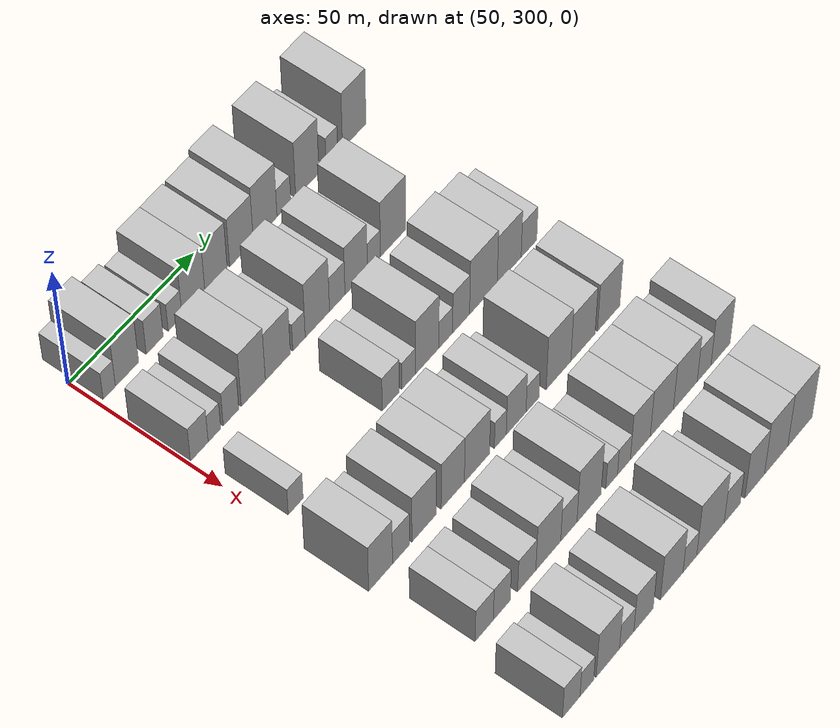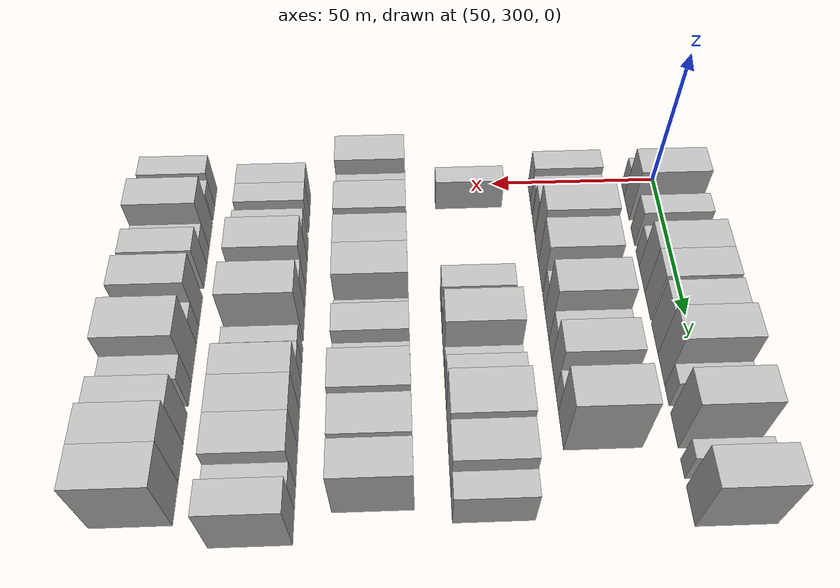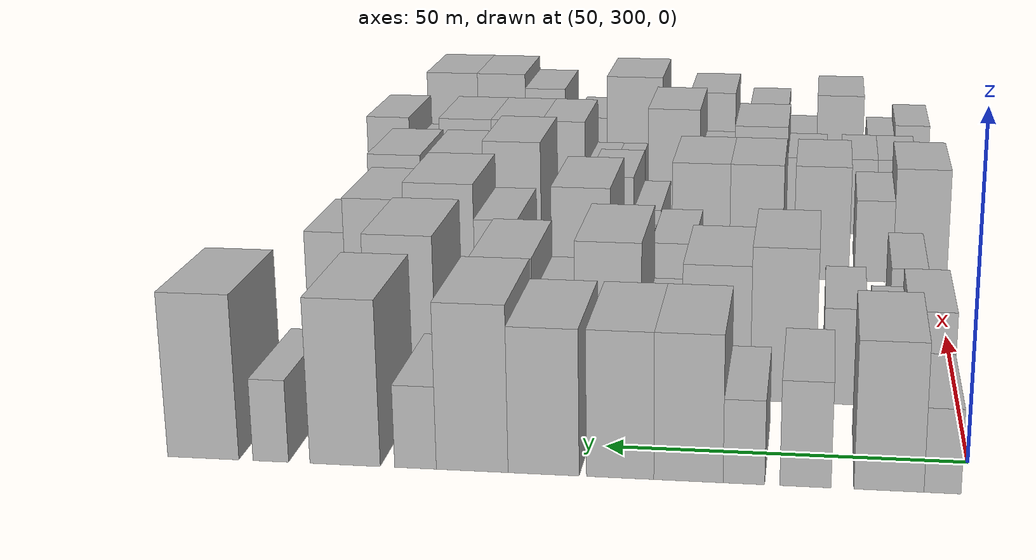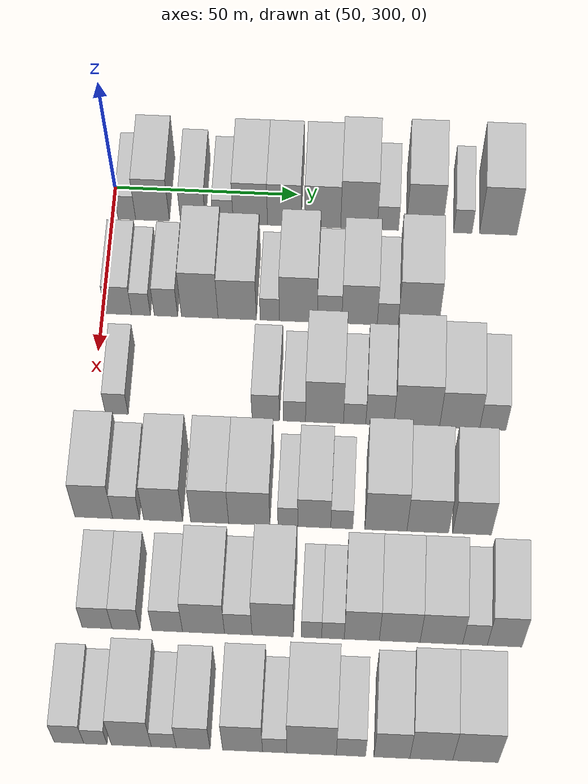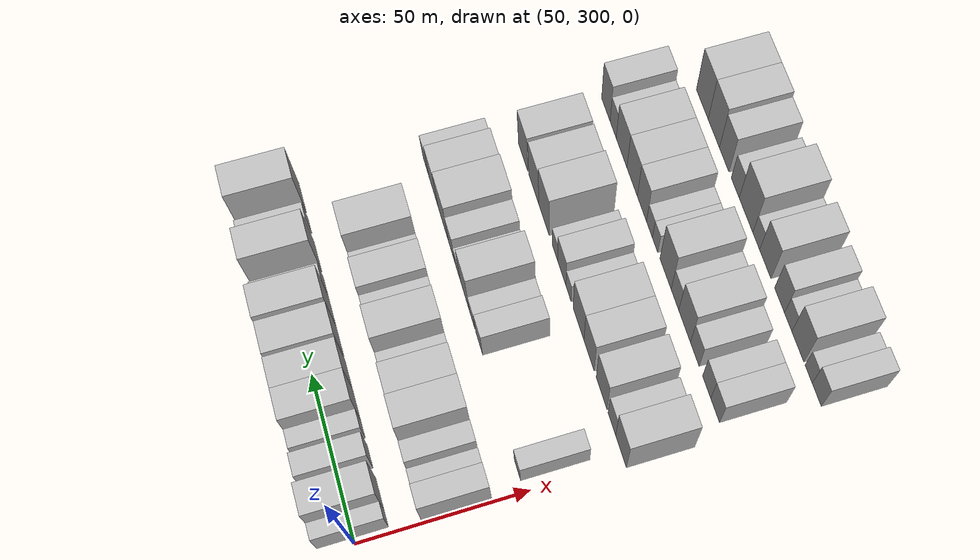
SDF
<sdf version="1.6">
 <world name="default">
  <model name="building_89">
   <static>1</static>
   <pose>50.0000 304.0474 0 0.000000 0.000000 0.000000</pose>
   <link name="link">
    <pose>0 0 6.00 0 0 0</pose>
    <collision name="collision"><geometry><box><size>20.0000 4.8259 12.0000</size></box></geometry></collision>
    <visual name="visual">
     <cast_shadows>0</cast_shadows>
     <geometry><box><size>20.0000 4.8259 12.0000</size></box></geometry>
     <material>
      <script>
       <uri>model://HANNAS_wall/materials/scripts</uri>
       <uri>model://HANNAS_wall/materials/textures</uri>
       <name>vrc/HANNAS_wall</name>
      </script>
     </material>
    </visual>
   </link>
  </model>
  <model name="building_90">
   <static>1</static>
   <pose>50.0000 311.0550 0 0.000000 0.000000 0.000000</pose>
   <link name="link">
    <pose>0 0 10.50 0 0 0</pose>
    <collision name="collision"><geometry><box><size>20.0000 9.1895 21.0000</size></box></geometry></collision>
    <visual name="visual">
     <cast_shadows>0</cast_shadows>
     <geometry><box><size>20.0000 9.1895 21.0000</size></box></geometry>
     <material>
      <script>
       <uri>model://HANNAS_wall/materials/scripts</uri>
       <uri>model://HANNAS_wall/materials/textures</uri>
       <name>vrc/HANNAS_wall</name>
      </script>
     </material>
    </visual>
   </link>
  </model>
  <model name="building_91">
   <static>1</static>
   <pose>50.0000 322.0457 0 0.000000 0.000000 0.000000</pose>
   <link name="link">
    <pose>0 0 7.50 0 0 0</pose>
    <collision name="collision"><geometry><box><size>20.0000 6.7919 15.0000</size></box></geometry></collision>
    <visual name="visual">
     <cast_shadows>0</cast_shadows>
     <geometry><box><size>20.0000 6.7919 15.0000</size></box></geometry>
     <material>
      <script>
       <uri>model://HANNAS_wall/materials/scripts</uri>
       <uri>model://HANNAS_wall/materials/textures</uri>
       <name>vrc/HANNAS_wall</name>
      </script>
     </material>
    </visual>
   </link>
  </model>
  <model name="building_92">
   <static>1</static>
   <pose>50.0000 330.2204 0 0.000000 0.000000 0.000000</pose>
   <link name="link">
    <pose>0 0 6.00 0 0 0</pose>
    <collision name="collision"><geometry><box><size>20.0000 5.5576 12.0000</size></box></geometry></collision>
    <visual name="visual">
     <cast_shadows>0</cast_shadows>
     <geometry><box><size>20.0000 5.5576 12.0000</size></box></geometry>
     <material>
      <script>
       <uri>model://HANNAS_wall/materials/scripts</uri>
       <uri>model://HANNAS_wall/materials/textures</uri>
       <name>vrc/HANNAS_wall</name>
      </script>
     </material>
    </visual>
   </link>
  </model>
  <model name="building_93">
   <static>1</static>
   <pose>50.0000 337.6442 0 0.000000 0.000000 0.000000</pose>
   <link name="link">
    <pose>0 0 10.50 0 0 0</pose>
    <collision name="collision"><geometry><box><size>20.0000 9.2901 21.0000</size></box></geometry></collision>
    <visual name="visual">
     <cast_shadows>0</cast_shadows>
     <geometry><box><size>20.0000 9.2901 21.0000</size></box></geometry>
     <material>
      <script>
       <uri>model://HANNAS_wall/materials/scripts</uri>
       <uri>model://HANNAS_wall/materials/textures</uri>
       <name>vrc/HANNAS_wall</name>
      </script>
     </material>
    </visual>
   </link>
  </model>
  <model name="building_94">
   <static>1</static>
   <pose>50.0000 346.8397 0 0.000000 0.000000 0.000000</pose>
   <link name="link">
    <pose>0 0 10.50 0 0 0</pose>
    <collision name="collision"><geometry><box><size>20.0000 9.1010 21.0000</size></box></geometry></collision>
    <visual name="visual">
     <cast_shadows>0</cast_shadows>
     <geometry><box><size>20.0000 9.1010 21.0000</size></box></geometry>
     <material>
      <script>
       <uri>model://HANNAS_wall/materials/scripts</uri>
       <uri>model://HANNAS_wall/materials/textures</uri>
       <name>vrc/HANNAS_wall</name>
      </script>
     </material>
    </visual>
   </link>
  </model>
  <model name="building_95">
   <static>1</static>
   <pose>50.0000 357.2459 0 0.000000 0.000000 0.000000</pose>
   <link name="link">
    <pose>0 0 10.50 0 0 0</pose>
    <collision name="collision"><geometry><box><size>20.0000 9.7113 21.0000</size></box></geometry></collision>
    <visual name="visual">
     <cast_shadows>0</cast_shadows>
     <geometry><box><size>20.0000 9.7113 21.0000</size></box></geometry>
     <material>
      <script>
       <uri>model://HANNAS_wall/materials/scripts</uri>
       <uri>model://HANNAS_wall/materials/textures</uri>
       <name>vrc/HANNAS_wall</name>
      </script>
     </material>
    </visual>
   </link>
  </model>
  <model name="building_96">
   <static>1</static>
   <pose>50.0000 367.0430 0 0.000000 0.000000 0.000000</pose>
   <link name="link">
    <pose>0 0 12.00 0 0 0</pose>
    <collision name="collision"><geometry><box><size>20.0000 9.8829 24.0000</size></box></geometry></collision>
    <visual name="visual">
     <cast_shadows>0</cast_shadows>
     <geometry><box><size>20.0000 9.8829 24.0000</size></box></geometry>
     <material>
      <script>
       <uri>model://HANNAS_wall/materials/scripts</uri>
       <uri>model://HANNAS_wall/materials/textures</uri>
       <name>vrc/HANNAS_wall</name>
      </script>
     </material>
    </visual>
   </link>
  </model>
  <model name="building_97">
   <static>1</static>
   <pose>50.0000 374.8742 0 0.000000 0.000000 0.000000</pose>
   <link name="link">
    <pose>0 0 6.00 0 0 0</pose>
    <collision name="collision"><geometry><box><size>20.0000 5.7795 12.0000</size></box></geometry></collision>
    <visual name="visual">
     <cast_shadows>0</cast_shadows>
     <geometry><box><size>20.0000 5.7795 12.0000</size></box></geometry>
     <material>
      <script>
       <uri>model://HANNAS_wall/materials/scripts</uri>
       <uri>model://HANNAS_wall/materials/textures</uri>
       <name>vrc/HANNAS_wall</name>
      </script>
     </material>
    </visual>
   </link>
  </model>
  <model name="building_98">
   <static>1</static>
   <pose>50.0000 384.6888 0 0.000000 0.000000 0.000000</pose>
   <link name="link">
    <pose>0 0 12.00 0 0 0</pose>
    <collision name="collision"><geometry><box><size>20.0000 9.8496 24.0000</size></box></geometry></collision>
    <visual name="visual">
     <cast_shadows>0</cast_shadows>
     <geometry><box><size>20.0000 9.8496 24.0000</size></box></geometry>
     <material>
      <script>
       <uri>model://HANNAS_wall/materials/scripts</uri>
       <uri>model://HANNAS_wall/materials/textures</uri>
       <name>vrc/HANNAS_wall</name>
      </script>
     </material>
    </visual>
   </link>
  </model>
  <model name="building_99">
   <static>1</static>
   <pose>50.0000 395.1259 0 0.000000 0.000000 0.000000</pose>
   <link name="link">
    <pose>0 0 6.00 0 0 0</pose>
    <collision name="collision"><geometry><box><size>20.0000 5.0246 12.0000</size></box></geometry></collision>
    <visual name="visual">
     <cast_shadows>0</cast_shadows>
     <geometry><box><size>20.0000 5.0246 12.0000</size></box></geometry>
     <material>
      <script>
       <uri>model://HANNAS_wall/materials/scripts</uri>
       <uri>model://HANNAS_wall/materials/textures</uri>
       <name>vrc/HANNAS_wall</name>
      </script>
     </material>
    </visual>
   </link>
  </model>
  <model name="building_100">
   <static>1</static>
   <pose>50.0000 404.6984 0 0.000000 0.000000 0.000000</pose>
   <link name="link">
    <pose>0 0 12.00 0 0 0</pose>
    <collision name="collision"><geometry><box><size>20.0000 10.1203 24.0000</size></box></geometry></collision>
    <visual name="visual">
     <cast_shadows>0</cast_shadows>
     <geometry><box><size>20.0000 10.1203 24.0000</size></box></geometry>
     <material>
      <script>
       <uri>model://HANNAS_wall/materials/scripts</uri>
       <uri>model://HANNAS_wall/materials/textures</uri>
       <name>vrc/HANNAS_wall</name>
      </script>
     </material>
    </visual>
   </link>
  </model>
  <model name="building_206">
   <static>1</static>
   <pose>79.0000 304.2929 0 0.000000 0.000000 0.000000</pose>
   <link name="link">
    <pose>0 0 7.50 0 0 0</pose>
    <collision name="collision"><geometry><box><size>20.0000 7.0312 15.0000</size></box></geometry></collision>
    <visual name="visual">
     <cast_shadows>0</cast_shadows>
     <geometry><box><size>20.0000 7.0312 15.0000</size></box></geometry>
     <material>
      <script>
       <uri>model://HANNAS_wall/materials/scripts</uri>
       <uri>model://HANNAS_wall/materials/textures</uri>
       <name>vrc/HANNAS_wall</name>
      </script>
     </material>
    </visual>
   </link>
  </model>
  <model name="building_207">
   <static>1</static>
   <pose>79.0000 310.3057 0 0.000000 0.000000 0.000000</pose>
   <link name="link">
    <pose>0 0 6.00 0 0 0</pose>
    <collision name="collision"><geometry><box><size>20.0000 4.9945 12.0000</size></box></geometry></collision>
    <visual name="visual">
     <cast_shadows>0</cast_shadows>
     <geometry><box><size>20.0000 4.9945 12.0000</size></box></geometry>
     <material>
      <script>
       <uri>model://HANNAS_wall/materials/scripts</uri>
       <uri>model://HANNAS_wall/materials/textures</uri>
       <name>vrc/HANNAS_wall</name>
      </script>
     </material>
    </visual>
   </link>
  </model>
  <model name="building_208">
   <static>1</static>
   <pose>79.0000 316.9139 0 0.000000 0.000000 0.000000</pose>
   <link name="link">
    <pose>0 0 7.50 0 0 0</pose>
    <collision name="collision"><geometry><box><size>20.0000 6.2218 15.0000</size></box></geometry></collision>
    <visual name="visual">
     <cast_shadows>0</cast_shadows>
     <geometry><box><size>20.0000 6.2218 15.0000</size></box></geometry>
     <material>
      <script>
       <uri>model://HANNAS_wall/materials/scripts</uri>
       <uri>model://HANNAS_wall/materials/textures</uri>
       <name>vrc/HANNAS_wall</name>
      </script>
     </material>
    </visual>
   </link>
  </model>
  <model name="building_209">
   <static>1</static>
   <pose>79.0000 325.8796 0 0.000000 0.000000 0.000000</pose>
   <link name="link">
    <pose>0 0 12.00 0 0 0</pose>
    <collision name="collision"><geometry><box><size>20.0000 9.7097 24.0000</size></box></geometry></collision>
    <visual name="visual">
     <cast_shadows>0</cast_shadows>
     <geometry><box><size>20.0000 9.7097 24.0000</size></box></geometry>
     <material>
      <script>
       <uri>model://HANNAS_wall/materials/scripts</uri>
       <uri>model://HANNAS_wall/materials/textures</uri>
       <name>vrc/HANNAS_wall</name>
      </script>
     </material>
    </visual>
   </link>
  </model>
  <model name="building_210">
   <static>1</static>
   <pose>79.0000 335.8239 0 0.000000 0.000000 0.000000</pose>
   <link name="link">
    <pose>0 0 10.50 0 0 0</pose>
    <collision name="collision"><geometry><box><size>20.0000 10.1788 21.0000</size></box></geometry></collision>
    <visual name="visual">
     <cast_shadows>0</cast_shadows>
     <geometry><box><size>20.0000 10.1788 21.0000</size></box></geometry>
     <material>
      <script>
       <uri>model://HANNAS_wall/materials/scripts</uri>
       <uri>model://HANNAS_wall/materials/textures</uri>
       <name>vrc/HANNAS_wall</name>
      </script>
     </material>
    </visual>
   </link>
  </model>
  <model name="building_211">
   <static>1</static>
   <pose>79.0000 344.4573 0 0.000000 0.000000 0.000000</pose>
   <link name="link">
    <pose>0 0 6.00 0 0 0</pose>
    <collision name="collision"><geometry><box><size>20.0000 5.0880 12.0000</size></box></geometry></collision>
    <visual name="visual">
     <cast_shadows>0</cast_shadows>
     <geometry><box><size>20.0000 5.0880 12.0000</size></box></geometry>
     <material>
      <script>
       <uri>model://HANNAS_wall/materials/scripts</uri>
       <uri>model://HANNAS_wall/materials/textures</uri>
       <name>vrc/HANNAS_wall</name>
      </script>
     </material>
    </visual>
   </link>
  </model>
  <model name="building_212">
   <static>1</static>
   <pose>79.0000 352.0068 0 0.000000 0.000000 0.000000</pose>
   <link name="link">
    <pose>0 0 12.00 0 0 0</pose>
    <collision name="collision"><geometry><box><size>20.0000 10.0111 24.0000</size></box></geometry></collision>
    <visual name="visual">
     <cast_shadows>0</cast_shadows>
     <geometry><box><size>20.0000 10.0111 24.0000</size></box></geometry>
     <material>
      <script>
       <uri>model://HANNAS_wall/materials/scripts</uri>
       <uri>model://HANNAS_wall/materials/textures</uri>
       <name>vrc/HANNAS_wall</name>
      </script>
     </material>
    </visual>
   </link>
  </model>
  <model name="building_213">
   <static>1</static>
   <pose>79.0000 360.2459 0 0.000000 0.000000 0.000000</pose>
   <link name="link">
    <pose>0 0 7.50 0 0 0</pose>
    <collision name="collision"><geometry><box><size>20.0000 6.4670 15.0000</size></box></geometry></collision>
    <visual name="visual">
     <cast_shadows>0</cast_shadows>
     <geometry><box><size>20.0000 6.4670 15.0000</size></box></geometry>
     <material>
      <script>
       <uri>model://HANNAS_wall/materials/scripts</uri>
       <uri>model://HANNAS_wall/materials/textures</uri>
       <name>vrc/HANNAS_wall</name>
      </script>
     </material>
    </visual>
   </link>
  </model>
  <model name="building_214">
   <static>1</static>
   <pose>79.0000 368.1643 0 0.000000 0.000000 0.000000</pose>
   <link name="link">
    <pose>0 0 10.50 0 0 0</pose>
    <collision name="collision"><geometry><box><size>20.0000 9.3698 21.0000</size></box></geometry></collision>
    <visual name="visual">
     <cast_shadows>0</cast_shadows>
     <geometry><box><size>20.0000 9.3698 21.0000</size></box></geometry>
     <material>
      <script>
       <uri>model://HANNAS_wall/materials/scripts</uri>
       <uri>model://HANNAS_wall/materials/textures</uri>
       <name>vrc/HANNAS_wall</name>
      </script>
     </material>
    </visual>
   </link>
  </model>
  <model name="building_215">
   <static>1</static>
   <pose>79.0000 375.6016 0 0.000000 0.000000 0.000000</pose>
   <link name="link">
    <pose>0 0 6.00 0 0 0</pose>
    <collision name="collision"><geometry><box><size>20.0000 5.5048 12.0000</size></box></geometry></collision>
    <visual name="visual">
     <cast_shadows>0</cast_shadows>
     <geometry><box><size>20.0000 5.5048 12.0000</size></box></geometry>
     <material>
      <script>
       <uri>model://HANNAS_wall/materials/scripts</uri>
       <uri>model://HANNAS_wall/materials/textures</uri>
       <name>vrc/HANNAS_wall</name>
      </script>
     </material>
    </visual>
   </link>
  </model>
  <model name="building_216">
   <static>1</static>
   <pose>79.0000 383.7181 0 0.000000 0.000000 0.000000</pose>
   <link name="link">
    <pose>0 0 12.00 0 0 0</pose>
    <collision name="collision"><geometry><box><size>20.0000 10.7282 24.0000</size></box></geometry></collision>
    <visual name="visual">
     <cast_shadows>0</cast_shadows>
     <geometry><box><size>20.0000 10.7282 24.0000</size></box></geometry>
     <material>
      <script>
       <uri>model://HANNAS_wall/materials/scripts</uri>
       <uri>model://HANNAS_wall/materials/textures</uri>
       <name>vrc/HANNAS_wall</name>
      </script>
     </material>
    </visual>
   </link>
  </model>
  <model name="building_316">
   <static>1</static>
   <pose>108.0000 306.3662 0 0.000000 0.000000 0.000000</pose>
   <link name="link">
    <pose>0 0 6.00 0 0 0</pose>
    <collision name="collision"><geometry><box><size>20.0000 5.9580 12.0000</size></box></geometry></collision>
    <visual name="visual">
     <cast_shadows>0</cast_shadows>
     <geometry><box><size>20.0000 5.9580 12.0000</size></box></geometry>
     <material>
      <script>
       <uri>model://HANNAS_wall/materials/scripts</uri>
       <uri>model://HANNAS_wall/materials/textures</uri>
       <name>vrc/HANNAS_wall</name>
      </script>
     </material>
    </visual>
   </link>
  </model>
  <model name="building_317">
   <static>1</static>
   <pose>108.0000 344.9542 0 0.000000 0.000000 0.000000</pose>
   <link name="link">
    <pose>0 0 7.50 0 0 0</pose>
    <collision name="collision"><geometry><box><size>20.0000 7.0726 15.0000</size></box></geometry></collision>
    <visual name="visual">
     <cast_shadows>0</cast_shadows>
     <geometry><box><size>20.0000 7.0726 15.0000</size></box></geometry>
     <material>
      <script>
       <uri>model://HANNAS_wall/materials/scripts</uri>
       <uri>model://HANNAS_wall/materials/textures</uri>
       <name>vrc/HANNAS_wall</name>
      </script>
     </material>
    </visual>
   </link>
  </model>
  <model name="building_318">
   <static>1</static>
   <pose>108.0000 352.3549 0 0.000000 0.000000 0.000000</pose>
   <link name="link">
    <pose>0 0 6.00 0 0 0</pose>
    <collision name="collision"><geometry><box><size>20.0000 5.7287 12.0000</size></box></geometry></collision>
    <visual name="visual">
     <cast_shadows>0</cast_shadows>
     <geometry><box><size>20.0000 5.7287 12.0000</size></box></geometry>
     <material>
      <script>
       <uri>model://HANNAS_wall/materials/scripts</uri>
       <uri>model://HANNAS_wall/materials/textures</uri>
       <name>vrc/HANNAS_wall</name>
      </script>
     </material>
    </visual>
   </link>
  </model>
  <model name="building_319">
   <static>1</static>
   <pose>108.0000 360.1176 0 0.000000 0.000000 0.000000</pose>
   <link name="link">
    <pose>0 0 12.00 0 0 0</pose>
    <collision name="collision"><geometry><box><size>20.0000 9.7967 24.0000</size></box></geometry></collision>
    <visual name="visual">
     <cast_shadows>0</cast_shadows>
     <geometry><box><size>20.0000 9.7967 24.0000</size></box></geometry>
     <material>
      <script>
       <uri>model://HANNAS_wall/materials/scripts</uri>
       <uri>model://HANNAS_wall/materials/textures</uri>
       <name>vrc/HANNAS_wall</name>
      </script>
     </material>
    </visual>
   </link>
  </model>
  <model name="building_320">
   <static>1</static>
   <pose>108.0000 367.8879 0 0.000000 0.000000 0.000000</pose>
   <link name="link">
    <pose>0 0 6.00 0 0 0</pose>
    <collision name="collision"><geometry><box><size>20.0000 5.7441 12.0000</size></box></geometry></collision>
    <visual name="visual">
     <cast_shadows>0</cast_shadows>
     <geometry><box><size>20.0000 5.7441 12.0000</size></box></geometry>
     <material>
      <script>
       <uri>model://HANNAS_wall/materials/scripts</uri>
       <uri>model://HANNAS_wall/materials/textures</uri>
       <name>vrc/HANNAS_wall</name>
      </script>
     </material>
    </visual>
   </link>
  </model>
  <model name="building_321">
   <static>1</static>
   <pose>108.0000 374.3660 0 0.000000 0.000000 0.000000</pose>
   <link name="link">
    <pose>0 0 9.00 0 0 0</pose>
    <collision name="collision"><geometry><box><size>20.0000 7.2121 18.0000</size></box></geometry></collision>
    <visual name="visual">
     <cast_shadows>0</cast_shadows>
     <geometry><box><size>20.0000 7.2121 18.0000</size></box></geometry>
     <material>
      <script>
       <uri>model://HANNAS_wall/materials/scripts</uri>
       <uri>model://HANNAS_wall/materials/textures</uri>
       <name>vrc/HANNAS_wall</name>
      </script>
     </material>
    </visual>
   </link>
  </model>
  <model name="building_322">
   <static>1</static>
   <pose>108.0000 383.8716 0 0.000000 0.000000 0.000000</pose>
   <link name="link">
    <pose>0 0 12.00 0 0 0</pose>
    <collision name="collision"><geometry><box><size>20.0000 11.7990 24.0000</size></box></geometry></collision>
    <visual name="visual">
     <cast_shadows>0</cast_shadows>
     <geometry><box><size>20.0000 11.7990 24.0000</size></box></geometry>
     <material>
      <script>
       <uri>model://HANNAS_wall/materials/scripts</uri>
       <uri>model://HANNAS_wall/materials/textures</uri>
       <name>vrc/HANNAS_wall</name>
      </script>
     </material>
    </visual>
   </link>
  </model>
  <model name="building_323">
   <static>1</static>
   <pose>108.0000 394.9389 0 0.000000 0.000000 0.000000</pose>
   <link name="link">
    <pose>0 0 10.50 0 0 0</pose>
    <collision name="collision"><geometry><box><size>20.0000 10.3356 21.0000</size></box></geometry></collision>
    <visual name="visual">
     <cast_shadows>0</cast_shadows>
     <geometry><box><size>20.0000 10.3356 21.0000</size></box></geometry>
     <material>
      <script>
       <uri>model://HANNAS_wall/materials/scripts</uri>
       <uri>model://HANNAS_wall/materials/textures</uri>
       <name>vrc/HANNAS_wall</name>
      </script>
     </material>
    </visual>
   </link>
  </model>
  <model name="building_324">
   <static>1</static>
   <pose>108.0000 403.4989 0 0.000000 0.000000 0.000000</pose>
   <link name="link">
    <pose>0 0 7.50 0 0 0</pose>
    <collision name="collision"><geometry><box><size>20.0000 6.7844 15.0000</size></box></geometry></collision>
    <visual name="visual">
     <cast_shadows>0</cast_shadows>
     <geometry><box><size>20.0000 6.7844 15.0000</size></box></geometry>
     <material>
      <script>
       <uri>model://HANNAS_wall/materials/scripts</uri>
       <uri>model://HANNAS_wall/materials/textures</uri>
       <name>vrc/HANNAS_wall</name>
      </script>
     </material>
    </visual>
   </link>
  </model>
  <model name="building_426">
   <static>1</static>
   <pose>137.0000 303.0813 0 0.000000 0.000000 0.000000</pose>
   <link name="link">
    <pose>0 0 10.50 0 0 0</pose>
    <collision name="collision"><geometry><box><size>20.0000 9.5681 21.0000</size></box></geometry></collision>
    <visual name="visual">
     <cast_shadows>0</cast_shadows>
     <geometry><box><size>20.0000 9.5681 21.0000</size></box></geometry>
     <material>
      <script>
       <uri>model://HANNAS_wall/materials/scripts</uri>
       <uri>model://HANNAS_wall/materials/textures</uri>
       <name>vrc/HANNAS_wall</name>
      </script>
     </material>
    </visual>
   </link>
  </model>
  <model name="building_427">
   <static>1</static>
   <pose>137.0000 311.2832 0 0.000000 0.000000 0.000000</pose>
   <link name="link">
    <pose>0 0 7.50 0 0 0</pose>
    <collision name="collision"><geometry><box><size>20.0000 6.8357 15.0000</size></box></geometry></collision>
    <visual name="visual">
     <cast_shadows>0</cast_shadows>
     <geometry><box><size>20.0000 6.8357 15.0000</size></box></geometry>
     <material>
      <script>
       <uri>model://HANNAS_wall/materials/scripts</uri>
       <uri>model://HANNAS_wall/materials/textures</uri>
       <name>vrc/HANNAS_wall</name>
      </script>
     </material>
    </visual>
   </link>
  </model>
  <model name="building_428">
   <static>1</static>
   <pose>137.0000 320.6449 0 0.000000 0.000000 0.000000</pose>
   <link name="link">
    <pose>0 0 10.50 0 0 0</pose>
    <collision name="collision"><geometry><box><size>20.0000 9.8877 21.0000</size></box></geometry></collision>
    <visual name="visual">
     <cast_shadows>0</cast_shadows>
     <geometry><box><size>20.0000 9.8877 21.0000</size></box></geometry>
     <material>
      <script>
       <uri>model://HANNAS_wall/materials/scripts</uri>
       <uri>model://HANNAS_wall/materials/textures</uri>
       <name>vrc/HANNAS_wall</name>
      </script>
     </material>
    </visual>
   </link>
  </model>
  <model name="building_429">
   <static>1</static>
   <pose>137.0000 332.3746 0 0.000000 0.000000 0.000000</pose>
   <link name="link">
    <pose>0 0 10.50 0 0 0</pose>
    <collision name="collision"><geometry><box><size>20.0000 9.5716 21.0000</size></box></geometry></collision>
    <visual name="visual">
     <cast_shadows>0</cast_shadows>
     <geometry><box><size>20.0000 9.5716 21.0000</size></box></geometry>
     <material>
      <script>
       <uri>model://HANNAS_wall/materials/scripts</uri>
       <uri>model://HANNAS_wall/materials/textures</uri>
       <name>vrc/HANNAS_wall</name>
      </script>
     </material>
    </visual>
   </link>
  </model>
  <model name="building_430">
   <static>1</static>
   <pose>137.0000 342.3753 0 0.000000 0.000000 0.000000</pose>
   <link name="link">
    <pose>0 0 10.50 0 0 0</pose>
    <collision name="collision"><geometry><box><size>20.0000 10.4297 21.0000</size></box></geometry></collision>
    <visual name="visual">
     <cast_shadows>0</cast_shadows>
     <geometry><box><size>20.0000 10.4297 21.0000</size></box></geometry>
     <material>
      <script>
       <uri>model://HANNAS_wall/materials/scripts</uri>
       <uri>model://HANNAS_wall/materials/textures</uri>
       <name>vrc/HANNAS_wall</name>
      </script>
     </material>
    </visual>
   </link>
  </model>
  <model name="building_431">
   <static>1</static>
   <pose>137.0000 352.0801 0 0.000000 0.000000 0.000000</pose>
   <link name="link">
    <pose>0 0 6.00 0 0 0</pose>
    <collision name="collision"><geometry><box><size>20.0000 4.9800 12.0000</size></box></geometry></collision>
    <visual name="visual">
     <cast_shadows>0</cast_shadows>
     <geometry><box><size>20.0000 4.9800 12.0000</size></box></geometry>
     <material>
      <script>
       <uri>model://HANNAS_wall/materials/scripts</uri>
       <uri>model://HANNAS_wall/materials/textures</uri>
       <name>vrc/HANNAS_wall</name>
      </script>
     </material>
    </visual>
   </link>
  </model>
  <model name="building_432">
   <static>1</static>
   <pose>137.0000 358.7350 0 0.000000 0.000000 0.000000</pose>
   <link name="link">
    <pose>0 0 9.00 0 0 0</pose>
    <collision name="collision"><geometry><box><size>20.0000 8.3296 18.0000</size></box></geometry></collision>
    <visual name="visual">
     <cast_shadows>0</cast_shadows>
     <geometry><box><size>20.0000 8.3296 18.0000</size></box></geometry>
     <material>
      <script>
       <uri>model://HANNAS_wall/materials/scripts</uri>
       <uri>model://HANNAS_wall/materials/textures</uri>
       <name>vrc/HANNAS_wall</name>
      </script>
     </material>
    </visual>
   </link>
  </model>
  <model name="building_433">
   <static>1</static>
   <pose>137.0000 365.6728 0 0.000000 0.000000 0.000000</pose>
   <link name="link">
    <pose>0 0 6.00 0 0 0</pose>
    <collision name="collision"><geometry><box><size>20.0000 5.5460 12.0000</size></box></geometry></collision>
    <visual name="visual">
     <cast_shadows>0</cast_shadows>
     <geometry><box><size>20.0000 5.5460 12.0000</size></box></geometry>
     <material>
      <script>
       <uri>model://HANNAS_wall/materials/scripts</uri>
       <uri>model://HANNAS_wall/materials/textures</uri>
       <name>vrc/HANNAS_wall</name>
      </script>
     </material>
    </visual>
   </link>
  </model>
  <model name="building_434">
   <static>1</static>
   <pose>137.0000 376.7437 0 0.000000 0.000000 0.000000</pose>
   <link name="link">
    <pose>0 0 12.00 0 0 0</pose>
    <collision name="collision"><geometry><box><size>20.0000 10.5958 24.0000</size></box></geometry></collision>
    <visual name="visual">
     <cast_shadows>0</cast_shadows>
     <geometry><box><size>20.0000 10.5958 24.0000</size></box></geometry>
     <material>
      <script>
       <uri>model://HANNAS_wall/materials/scripts</uri>
       <uri>model://HANNAS_wall/materials/textures</uri>
       <name>vrc/HANNAS_wall</name>
      </script>
     </material>
    </visual>
   </link>
  </model>
  <model name="building_435">
   <static>1</static>
   <pose>137.0000 387.2841 0 0.000000 0.000000 0.000000</pose>
   <link name="link">
    <pose>0 0 10.50 0 0 0</pose>
    <collision name="collision"><geometry><box><size>20.0000 10.4851 21.0000</size></box></geometry></collision>
    <visual name="visual">
     <cast_shadows>0</cast_shadows>
     <geometry><box><size>20.0000 10.4851 21.0000</size></box></geometry>
     <material>
      <script>
       <uri>model://HANNAS_wall/materials/scripts</uri>
       <uri>model://HANNAS_wall/materials/textures</uri>
       <name>vrc/HANNAS_wall</name>
      </script>
     </material>
    </visual>
   </link>
  </model>
  <model name="building_436">
   <static>1</static>
   <pose>137.0000 398.4208 0 0.000000 0.000000 0.000000</pose>
   <link name="link">
    <pose>0 0 10.50 0 0 0</pose>
    <collision name="collision"><geometry><box><size>20.0000 9.7883 21.0000</size></box></geometry></collision>
    <visual name="visual">
     <cast_shadows>0</cast_shadows>
     <geometry><box><size>20.0000 9.7883 21.0000</size></box></geometry>
     <material>
      <script>
       <uri>model://HANNAS_wall/materials/scripts</uri>
       <uri>model://HANNAS_wall/materials/textures</uri>
       <name>vrc/HANNAS_wall</name>
      </script>
     </material>
    </visual>
   </link>
  </model>
  <model name="building_533">
   <static>1</static>
   <pose>166.0000 306.5633 0 0.000000 0.000000 0.000000</pose>
   <link name="link">
    <pose>0 0 7.50 0 0 0</pose>
    <collision name="collision"><geometry><box><size>20.0000 7.3729 15.0000</size></box></geometry></collision>
    <visual name="visual">
     <cast_shadows>0</cast_shadows>
     <geometry><box><size>20.0000 7.3729 15.0000</size></box></geometry>
     <material>
      <script>
       <uri>model://HANNAS_wall/materials/scripts</uri>
       <uri>model://HANNAS_wall/materials/textures</uri>
       <name>vrc/HANNAS_wall</name>
      </script>
     </material>
    </visual>
   </link>
  </model>
  <model name="building_534">
   <static>1</static>
   <pose>166.0000 313.7000 0 0.000000 0.000000 0.000000</pose>
   <link name="link">
    <pose>0 0 7.50 0 0 0</pose>
    <collision name="collision"><geometry><box><size>20.0000 6.9005 15.0000</size></box></geometry></collision>
    <visual name="visual">
     <cast_shadows>0</cast_shadows>
     <geometry><box><size>20.0000 6.9005 15.0000</size></box></geometry>
     <material>
      <script>
       <uri>model://HANNAS_wall/materials/scripts</uri>
       <uri>model://HANNAS_wall/materials/textures</uri>
       <name>vrc/HANNAS_wall</name>
      </script>
     </material>
    </visual>
   </link>
  </model>
  <model name="building_535">
   <static>1</static>
   <pose>166.0000 323.8969 0 0.000000 0.000000 0.000000</pose>
   <link name="link">
    <pose>0 0 7.50 0 0 0</pose>
    <collision name="collision"><geometry><box><size>20.0000 7.4933 15.0000</size></box></geometry></collision>
    <visual name="visual">
     <cast_shadows>0</cast_shadows>
     <geometry><box><size>20.0000 7.4933 15.0000</size></box></geometry>
     <material>
      <script>
       <uri>model://HANNAS_wall/materials/scripts</uri>
       <uri>model://HANNAS_wall/materials/textures</uri>
       <name>vrc/HANNAS_wall</name>
      </script>
     </material>
    </visual>
   </link>
  </model>
  <model name="building_536">
   <static>1</static>
   <pose>166.0000 332.7966 0 0.000000 0.000000 0.000000</pose>
   <link name="link">
    <pose>0 0 10.50 0 0 0</pose>
    <collision name="collision"><geometry><box><size>20.0000 10.3062 21.0000</size></box></geometry></collision>
    <visual name="visual">
     <cast_shadows>0</cast_shadows>
     <geometry><box><size>20.0000 10.3062 21.0000</size></box></geometry>
     <material>
      <script>
       <uri>model://HANNAS_wall/materials/scripts</uri>
       <uri>model://HANNAS_wall/materials/textures</uri>
       <name>vrc/HANNAS_wall</name>
      </script>
     </material>
    </visual>
   </link>
  </model>
  <model name="building_537">
   <static>1</static>
   <pose>166.0000 341.3366 0 0.000000 0.000000 0.000000</pose>
   <link name="link">
    <pose>0 0 7.50 0 0 0</pose>
    <collision name="collision"><geometry><box><size>20.0000 6.7738 15.0000</size></box></geometry></collision>
    <visual name="visual">
     <cast_shadows>0</cast_shadows>
     <geometry><box><size>20.0000 6.7738 15.0000</size></box></geometry>
     <material>
      <script>
       <uri>model://HANNAS_wall/materials/scripts</uri>
       <uri>model://HANNAS_wall/materials/textures</uri>
       <name>vrc/HANNAS_wall</name>
      </script>
     </material>
    </visual>
   </link>
  </model>
  <model name="building_538">
   <static>1</static>
   <pose>166.0000 349.8045 0 0.000000 0.000000 0.000000</pose>
   <link name="link">
    <pose>0 0 12.00 0 0 0</pose>
    <collision name="collision"><geometry><box><size>20.0000 10.1621 24.0000</size></box></geometry></collision>
    <visual name="visual">
     <cast_shadows>0</cast_shadows>
     <geometry><box><size>20.0000 10.1621 24.0000</size></box></geometry>
     <material>
      <script>
       <uri>model://HANNAS_wall/materials/scripts</uri>
       <uri>model://HANNAS_wall/materials/textures</uri>
       <name>vrc/HANNAS_wall</name>
      </script>
     </material>
    </visual>
   </link>
  </model>
  <model name="building_539">
   <static>1</static>
   <pose>166.0000 359.3549 0 0.000000 0.000000 0.000000</pose>
   <link name="link">
    <pose>0 0 6.00 0 0 0</pose>
    <collision name="collision"><geometry><box><size>20.0000 4.9386 12.0000</size></box></geometry></collision>
    <visual name="visual">
     <cast_shadows>0</cast_shadows>
     <geometry><box><size>20.0000 4.9386 12.0000</size></box></geometry>
     <material>
      <script>
       <uri>model://HANNAS_wall/materials/scripts</uri>
       <uri>model://HANNAS_wall/materials/textures</uri>
       <name>vrc/HANNAS_wall</name>
      </script>
     </material>
    </visual>
   </link>
  </model>
  <model name="building_540">
   <static>1</static>
   <pose>166.0000 364.5872 0 0.000000 0.000000 0.000000</pose>
   <link name="link">
    <pose>0 0 6.00 0 0 0</pose>
    <collision name="collision"><geometry><box><size>20.0000 5.5259 12.0000</size></box></geometry></collision>
    <visual name="visual">
     <cast_shadows>0</cast_shadows>
     <geometry><box><size>20.0000 5.5259 12.0000</size></box></geometry>
     <material>
      <script>
       <uri>model://HANNAS_wall/materials/scripts</uri>
       <uri>model://HANNAS_wall/materials/textures</uri>
       <name>vrc/HANNAS_wall</name>
      </script>
     </material>
    </visual>
   </link>
  </model>
  <model name="building_541">
   <static>1</static>
   <pose>166.0000 371.6437 0 0.000000 0.000000 0.000000</pose>
   <link name="link">
    <pose>0 0 10.50 0 0 0</pose>
    <collision name="collision"><geometry><box><size>20.0000 8.5872 21.0000</size></box></geometry></collision>
    <visual name="visual">
     <cast_shadows>0</cast_shadows>
     <geometry><box><size>20.0000 8.5872 21.0000</size></box></geometry>
     <material>
      <script>
       <uri>model://HANNAS_wall/materials/scripts</uri>
       <uri>model://HANNAS_wall/materials/textures</uri>
       <name>vrc/HANNAS_wall</name>
      </script>
     </material>
    </visual>
   </link>
  </model>
  <model name="building_542">
   <static>1</static>
   <pose>166.0000 380.9294 0 0.000000 0.000000 0.000000</pose>
   <link name="link">
    <pose>0 0 10.50 0 0 0</pose>
    <collision name="collision"><geometry><box><size>20.0000 9.9841 21.0000</size></box></geometry></collision>
    <visual name="visual">
     <cast_shadows>0</cast_shadows>
     <geometry><box><size>20.0000 9.9841 21.0000</size></box></geometry>
     <material>
      <script>
       <uri>model://HANNAS_wall/materials/scripts</uri>
       <uri>model://HANNAS_wall/materials/textures</uri>
       <name>vrc/HANNAS_wall</name>
      </script>
     </material>
    </visual>
   </link>
  </model>
  <model name="building_543">
   <static>1</static>
   <pose>166.0000 391.1402 0 0.000000 0.000000 0.000000</pose>
   <link name="link">
    <pose>0 0 10.50 0 0 0</pose>
    <collision name="collision"><geometry><box><size>20.0000 10.4374 21.0000</size></box></geometry></collision>
    <visual name="visual">
     <cast_shadows>0</cast_shadows>
     <geometry><box><size>20.0000 10.4374 21.0000</size></box></geometry>
     <material>
      <script>
       <uri>model://HANNAS_wall/materials/scripts</uri>
       <uri>model://HANNAS_wall/materials/textures</uri>
       <name>vrc/HANNAS_wall</name>
      </script>
     </material>
    </visual>
   </link>
  </model>
  <model name="building_544">
   <static>1</static>
   <pose>166.0000 399.3876 0 0.000000 0.000000 0.000000</pose>
   <link name="link">
    <pose>0 0 7.50 0 0 0</pose>
    <collision name="collision"><geometry><box><size>20.0000 6.0575 15.0000</size></box></geometry></collision>
    <visual name="visual">
     <cast_shadows>0</cast_shadows>
     <geometry><box><size>20.0000 6.0575 15.0000</size></box></geometry>
     <material>
      <script>
       <uri>model://HANNAS_wall/materials/scripts</uri>
       <uri>model://HANNAS_wall/materials/textures</uri>
       <name>vrc/HANNAS_wall</name>
      </script>
     </material>
    </visual>
   </link>
  </model>
  <model name="building_545">
   <static>1</static>
   <pose>166.0000 406.6626 0 0.000000 0.000000 0.000000</pose>
   <link name="link">
    <pose>0 0 10.50 0 0 0</pose>
    <collision name="collision"><geometry><box><size>20.0000 8.4924 21.0000</size></box></geometry></collision>
    <visual name="visual">
     <cast_shadows>0</cast_shadows>
     <geometry><box><size>20.0000 8.4924 21.0000</size></box></geometry>
     <material>
      <script>
       <uri>model://HANNAS_wall/materials/scripts</uri>
       <uri>model://HANNAS_wall/materials/textures</uri>
       <name>vrc/HANNAS_wall</name>
      </script>
     </material>
    </visual>
   </link>
  </model>
  <model name="building_650">
   <static>1</static>
   <pose>195.0000 302.4809 0 0.000000 0.000000 0.000000</pose>
   <link name="link">
    <pose>0 0 7.50 0 0 0</pose>
    <collision name="collision"><geometry><box><size>20.0000 7.1069 15.0000</size></box></geometry></collision>
    <visual name="visual">
     <cast_shadows>0</cast_shadows>
     <geometry><box><size>20.0000 7.1069 15.0000</size></box></geometry>
     <material>
      <script>
       <uri>model://HANNAS_wall/materials/scripts</uri>
       <uri>model://HANNAS_wall/materials/textures</uri>
       <name>vrc/HANNAS_wall</name>
      </script>
     </material>
    </visual>
   </link>
  </model>
  <model name="building_651">
   <static>1</static>
   <pose>195.0000 308.8378 0 0.000000 0.000000 0.000000</pose>
   <link name="link">
    <pose>0 0 6.00 0 0 0</pose>
    <collision name="collision"><geometry><box><size>20.0000 5.6070 12.0000</size></box></geometry></collision>
    <visual name="visual">
     <cast_shadows>0</cast_shadows>
     <geometry><box><size>20.0000 5.6070 12.0000</size></box></geometry>
     <material>
      <script>
       <uri>model://HANNAS_wall/materials/scripts</uri>
       <uri>model://HANNAS_wall/materials/textures</uri>
       <name>vrc/HANNAS_wall</name>
      </script>
     </material>
    </visual>
   </link>
  </model>
  <model name="building_652">
   <static>1</static>
   <pose>195.0000 317.4535 0 0.000000 0.000000 0.000000</pose>
   <link name="link">
    <pose>0 0 10.50 0 0 0</pose>
    <collision name="collision"><geometry><box><size>20.0000 9.6243 21.0000</size></box></geometry></collision>
    <visual name="visual">
     <cast_shadows>0</cast_shadows>
     <geometry><box><size>20.0000 9.6243 21.0000</size></box></geometry>
     <material>
      <script>
       <uri>model://HANNAS_wall/materials/scripts</uri>
       <uri>model://HANNAS_wall/materials/textures</uri>
       <name>vrc/HANNAS_wall</name>
      </script>
     </material>
    </visual>
   </link>
  </model>
  <model name="building_653">
   <static>1</static>
   <pose>195.0000 325.2459 0 0.000000 0.000000 0.000000</pose>
   <link name="link">
    <pose>0 0 6.00 0 0 0</pose>
    <collision name="collision"><geometry><box><size>20.0000 5.9605 12.0000</size></box></geometry></collision>
    <visual name="visual">
     <cast_shadows>0</cast_shadows>
     <geometry><box><size>20.0000 5.9605 12.0000</size></box></geometry>
     <material>
      <script>
       <uri>model://HANNAS_wall/materials/scripts</uri>
       <uri>model://HANNAS_wall/materials/textures</uri>
       <name>vrc/HANNAS_wall</name>
      </script>
     </material>
    </visual>
   </link>
  </model>
  <model name="building_654">
   <static>1</static>
   <pose>195.0000 332.2872 0 0.000000 0.000000 0.000000</pose>
   <link name="link">
    <pose>0 0 9.00 0 0 0</pose>
    <collision name="collision"><geometry><box><size>20.0000 8.1221 18.0000</size></box></geometry></collision>
    <visual name="visual">
     <cast_shadows>0</cast_shadows>
     <geometry><box><size>20.0000 8.1221 18.0000</size></box></geometry>
     <material>
      <script>
       <uri>model://HANNAS_wall/materials/scripts</uri>
       <uri>model://HANNAS_wall/materials/textures</uri>
       <name>vrc/HANNAS_wall</name>
      </script>
     </material>
    </visual>
   </link>
  </model>
  <model name="building_655">
   <static>1</static>
   <pose>195.0000 344.1219 0 0.000000 0.000000 0.000000</pose>
   <link name="link">
    <pose>0 0 10.50 0 0 0</pose>
    <collision name="collision"><geometry><box><size>20.0000 9.5474 21.0000</size></box></geometry></collision>
    <visual name="visual">
     <cast_shadows>0</cast_shadows>
     <geometry><box><size>20.0000 9.5474 21.0000</size></box></geometry>
     <material>
      <script>
       <uri>model://HANNAS_wall/materials/scripts</uri>
       <uri>model://HANNAS_wall/materials/textures</uri>
       <name>vrc/HANNAS_wall</name>
      </script>
     </material>
    </visual>
   </link>
  </model>
  <model name="building_656">
   <static>1</static>
   <pose>195.0000 351.8086 0 0.000000 0.000000 0.000000</pose>
   <link name="link">
    <pose>0 0 6.00 0 0 0</pose>
    <collision name="collision"><geometry><box><size>20.0000 5.8259 12.0000</size></box></geometry></collision>
    <visual name="visual">
     <cast_shadows>0</cast_shadows>
     <geometry><box><size>20.0000 5.8259 12.0000</size></box></geometry>
     <material>
      <script>
       <uri>model://HANNAS_wall/materials/scripts</uri>
       <uri>model://HANNAS_wall/materials/textures</uri>
       <name>vrc/HANNAS_wall</name>
      </script>
     </material>
    </visual>
   </link>
  </model>
  <model name="building_657">
   <static>1</static>
   <pose>195.0000 360.6284 0 0.000000 0.000000 0.000000</pose>
   <link name="link">
    <pose>0 0 12.00 0 0 0</pose>
    <collision name="collision"><geometry><box><size>20.0000 11.8139 24.0000</size></box></geometry></collision>
    <visual name="visual">
     <cast_shadows>0</cast_shadows>
     <geometry><box><size>20.0000 11.8139 24.0000</size></box></geometry>
     <material>
      <script>
       <uri>model://HANNAS_wall/materials/scripts</uri>
       <uri>model://HANNAS_wall/materials/textures</uri>
       <name>vrc/HANNAS_wall</name>
      </script>
     </material>
    </visual>
   </link>
  </model>
  <model name="building_658">
   <static>1</static>
   <pose>195.0000 370.0234 0 0.000000 0.000000 0.000000</pose>
   <link name="link">
    <pose>0 0 7.50 0 0 0</pose>
    <collision name="collision"><geometry><box><size>20.0000 6.9760 15.0000</size></box></geometry></collision>
    <visual name="visual">
     <cast_shadows>0</cast_shadows>
     <geometry><box><size>20.0000 6.9760 15.0000</size></box></geometry>
     <material>
      <script>
       <uri>model://HANNAS_wall/materials/scripts</uri>
       <uri>model://HANNAS_wall/materials/textures</uri>
       <name>vrc/HANNAS_wall</name>
      </script>
     </material>
    </visual>
   </link>
  </model>
  <model name="building_659">
   <static>1</static>
   <pose>195.0000 379.7945 0 0.000000 0.000000 0.000000</pose>
   <link name="link">
    <pose>0 0 10.50 0 0 0</pose>
    <collision name="collision"><geometry><box><size>20.0000 8.5663 21.0000</size></box></geometry></collision>
    <visual name="visual">
     <cast_shadows>0</cast_shadows>
     <geometry><box><size>20.0000 8.5663 21.0000</size></box></geometry>
     <material>
      <script>
       <uri>model://HANNAS_wall/materials/scripts</uri>
       <uri>model://HANNAS_wall/materials/textures</uri>
       <name>vrc/HANNAS_wall</name>
      </script>
     </material>
    </visual>
   </link>
  </model>
  <model name="building_660">
   <static>1</static>
   <pose>195.0000 389.1968 0 0.000000 0.000000 0.000000</pose>
   <link name="link">
    <pose>0 0 12.00 0 0 0</pose>
    <collision name="collision"><geometry><box><size>20.0000 10.2382 24.0000</size></box></geometry></collision>
    <visual name="visual">
     <cast_shadows>0</cast_shadows>
     <geometry><box><size>20.0000 10.2382 24.0000</size></box></geometry>
     <material>
      <script>
       <uri>model://HANNAS_wall/materials/scripts</uri>
       <uri>model://HANNAS_wall/materials/textures</uri>
       <name>vrc/HANNAS_wall</name>
      </script>
     </material>
    </visual>
   </link>
  </model>
  <model name="building_661">
   <static>1</static>
   <pose>195.0000 399.7509 0 0.000000 0.000000 0.000000</pose>
   <link name="link">
    <pose>0 0 12.00 0 0 0</pose>
    <collision name="collision"><geometry><box><size>20.0000 10.8699 24.0000</size></box></geometry></collision>
    <visual name="visual">
     <cast_shadows>0</cast_shadows>
     <geometry><box><size>20.0000 10.8699 24.0000</size></box></geometry>
     <material>
      <script>
       <uri>model://HANNAS_wall/materials/scripts</uri>
       <uri>model://HANNAS_wall/materials/textures</uri>
       <name>vrc/HANNAS_wall</name>
      </script>
     </material>
    </visual>
   </link>
  </model>
 </world>
</sdf>
